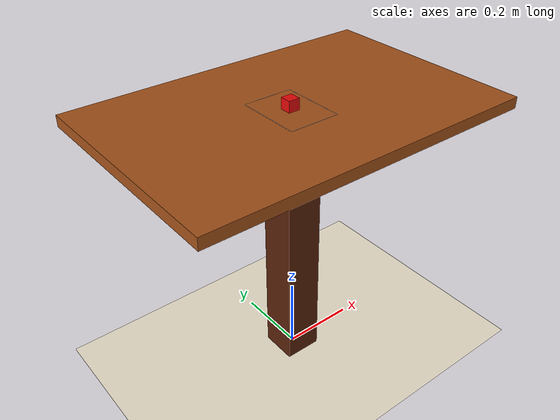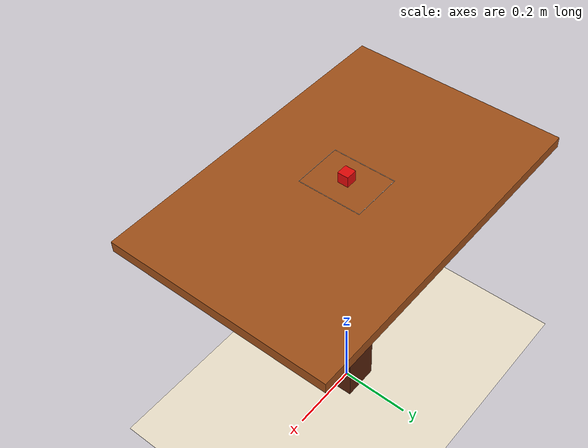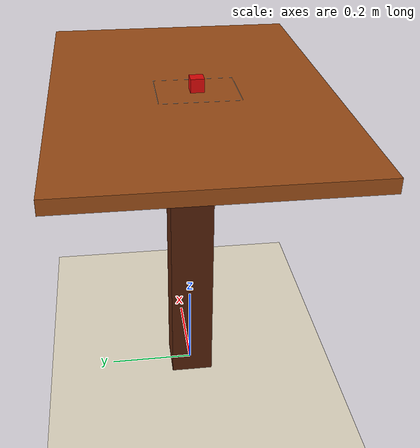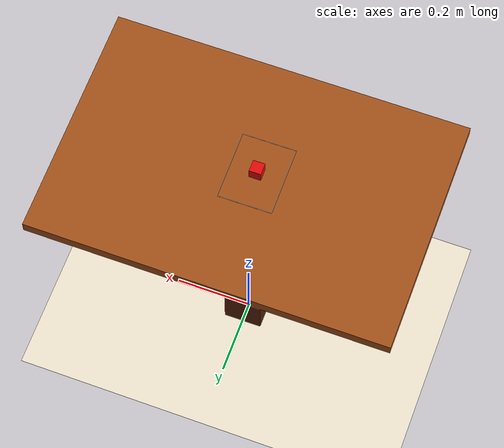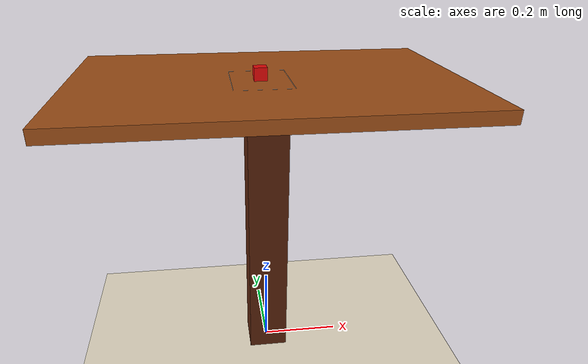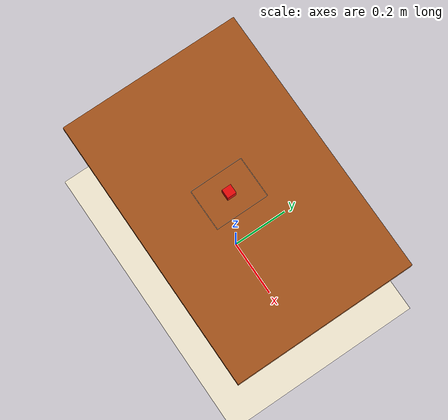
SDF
<?xml version='1.0' encoding='utf-8'?>
<sdf version="1.6">
  <world name="robot_world">
    <physics name="day3_v5_1ms" type="ignored">
      <max_step_size>0.002</max_step_size>
      <real_time_factor>1.0</real_time_factor>
      <real_time_update_rate>500</real_time_update_rate>
      <max_contacts>20</max_contacts>
      <dart>
        <solver>
          <solver_type>dantzig</solver_type>
        </solver>
        <collision_detector>ode</collision_detector>
      </dart>
    </physics>
    <plugin filename="ignition-gazebo-physics-system" name="ignition::gazebo::systems::Physics">
    </plugin>
    <plugin filename="ignition-gazebo-user-commands-system" name="ignition::gazebo::systems::UserCommands">
    </plugin>
    <plugin filename="ignition-gazebo-scene-broadcaster-system" name="ignition::gazebo::systems::SceneBroadcaster">
    </plugin>
    <plugin filename="ignition-gazebo-contact-system" name="gz::sim::systems::Contact">
    </plugin>
    <plugin filename="ignition-gazebo-sensors-system" name="ignition::gazebo::systems::Sensors">
      <render_engine>ogre2</render_engine>
    </plugin>
    <scene>
      <ambient>1.0 1.0 1.0</ambient>
      <background>0.8 0.8 0.8</background>
    </scene>
    <light type="directional" name="sun">
      <cast_shadows>true</cast_shadows>
      <pose>0 0 10 0 0 0</pose>
      <diffuse>0.8 0.8 0.8 1</diffuse>
      <specular>0.2 0.2 0.2 1</specular>
      <attenuation>
        <range>1000</range>
        <constant>0.9</constant>
        <linear>0.01</linear>
        <quadratic>0.001</quadratic>
      </attenuation>
      <direction>-0.5 0.1 -0.9</direction>
    </light>
    <model name="ground_plane">
      <static>true</static>
      <link name="link">
        <collision name="collision">
          <geometry>
            <plane>
              <normal>0 0 1</normal>
              <size>100 100</size>
            </plane>
          </geometry>
        </collision>
        <visual name="visual">
          <geometry>
            <plane>
              <normal>0 0 1</normal>
              <size>100 100</size>
            </plane>
          </geometry>
          <material>
            <ambient>0.94 0.90 0.81 1</ambient>
            <diffuse>0.94 0.90 0.81 1</diffuse>
            <specular>1 1 1 0</specular>
          </material>
        </visual>
      </link>
    </model>
    <model name="table">
      <static>true</static>
      <link name="table_link">
        <collision name="top_collision">
          <pose>0 0 0.735 0 0 0</pose>
          <geometry>
            <box>
              <size>0.90 0.60 0.03</size>
            </box>
          </geometry>
        </collision>
        <visual name="top_visual">
          <pose>0 0 0.735 0 0 0</pose>
          <geometry>
            <box>
              <size>0.90 0.60 0.03</size>
            </box>
          </geometry>
          <material>
            <ambient>0.36 0.17 0.06 1</ambient>
            <diffuse>0.64 0.32 0.10 1</diffuse>
            <specular>0.05 0.03 0.02 1</specular>
            <emissive>0.00 0.00 0.00 1</emissive>
          </material>
        </visual>
        <collision name="pedestal_collision">
          <pose>0 0 0.36 0 0 0</pose>
          <geometry>
            <box>
              <size>0.10 0.10 0.72</size>
            </box>
          </geometry>
        </collision>
        <visual name="pedestal_visual">
          <pose>0 0 0.36 0 0 0</pose>
          <geometry>
            <box>
              <size>0.10 0.10 0.72</size>
            </box>
          </geometry>
          <material>
            <ambient>0.18 0.07 0.02 1</ambient>
            <diffuse>0.34 0.13 0.04 1</diffuse>
            <specular>0.03 0.02 0.01 1</specular>
            <emissive>0.00 0.00 0.00 1</emissive>
          </material>
        </visual>
      </link>
    </model>
    <model name="wood_block">
      <pose>-0.01540777340756408 -0.012438901168749173 0.765 0 0 0</pose>
      <link name="block_link">
        <inertial>
          <mass>0.03</mass>
          <inertia>
            <ixx>4.5e-6</ixx>
            <iyy>4.5e-6</iyy>
            <izz>4.5e-6</izz>
            <ixy>0</ixy>
            <ixz>0</ixz>
            <iyz>0</iyz>
          </inertia>
        </inertial>
        <collision name="block_collision">
          <geometry>
            <box>
              <size>.03 .03 .03</size>
            </box>
          </geometry>
          <max_contacts>20</max_contacts>
          <surface>
            <friction>
              <ode>
                <mu>6.0</mu>
                <mu2>6.0</mu2>
                <slip1>0.0</slip1>
                <slip2>0.0</slip2>
              </ode>
            </friction>
            <contact>
              <collide_without_contact>false</collide_without_contact>
              <poissons_ratio>0.35</poissons_ratio>
              <elastic_modulus>1e8</elastic_modulus>
              <ode>
                <kp>100000</kp>
                <kd>10</kd>
                <max_vel>0.02</max_vel>
                <min_depth>0.0001</min_depth>
              </ode>
            </contact>
          </surface>
        </collision>
        <visual name="block_visual">
          <geometry>
            <box>
              <size>.03 .03 .03</size>
            </box>
          </geometry>
          <material>
            <ambient>0.45 0.01 0.01 1</ambient>
            <diffuse>0.90 0.03 0.03 1</diffuse>
            <specular>0.06 0.04 0.04 1</specular>
            <emissive>0.00 0.00 0.00 1</emissive>
          </material>
        </visual>
        <sensor name="day3_v5_block_contact" type="contact">
          <always_on>true</always_on>
          <update_rate>125</update_rate>
          <visualize>false</visualize>
          <topic>/day3_v5/block/contacts</topic>
          <contact>
            <collision>block_collision</collision>
          </contact>
        </sensor>
      </link>
      <plugin filename="ignition-gazebo-odometry-publisher-system" name="ignition::gazebo::systems::OdometryPublisher">
        <dimensions>3</dimensions>
        <odom_publish_frequency>50</odom_publish_frequency>
        <odom_topic>/day3_v5/block/odometry</odom_topic>
        <odom_frame>world</odom_frame>
        <robot_base_frame>block_link</robot_base_frame>
        <tf_topic>/day3_v5/block/odometry_tf</tf_topic>
      </plugin>
    </model>
    <gravity>0 0 -9.80665</gravity>
    <model name="white_recognition_area">
      <static>true</static>
      <pose>-0.01540777340756408 -0.012438901168749173 0.7501 0 0 -3.1366588877894728</pose>
      <link name="outline">
        <visual name="edge_0">
          <pose>0 0.0875 0 0 0 0</pose>
          <geometry>
            <box>
              <size>0.135 0.001 .0001</size>
            </box>
          </geometry>
          <material>
            <ambient>1 1 1 1</ambient>
            <diffuse>1 1 1 1</diffuse>
          </material>
        </visual>
        <visual name="edge_1">
          <pose>0 -0.0875 0 0 0 0</pose>
          <geometry>
            <box>
              <size>0.135 0.001 .0001</size>
            </box>
          </geometry>
          <material>
            <ambient>1 1 1 1</ambient>
            <diffuse>1 1 1 1</diffuse>
          </material>
        </visual>
        <visual name="edge_2">
          <pose>0.0675 0 0 0 0 0</pose>
          <geometry>
            <box>
              <size>0.001 0.175 .0001</size>
            </box>
          </geometry>
          <material>
            <ambient>1 1 1 1</ambient>
            <diffuse>1 1 1 1</diffuse>
          </material>
        </visual>
        <visual name="edge_3">
          <pose>-0.0675 0 0 0 0 0</pose>
          <geometry>
            <box>
              <size>0.001 0.175 .0001</size>
            </box>
          </geometry>
          <material>
            <ambient>1 1 1 1</ambient>
            <diffuse>1 1 1 1</diffuse>
          </material>
        </visual>
      </link>
    </model>
  </world>
</sdf>
